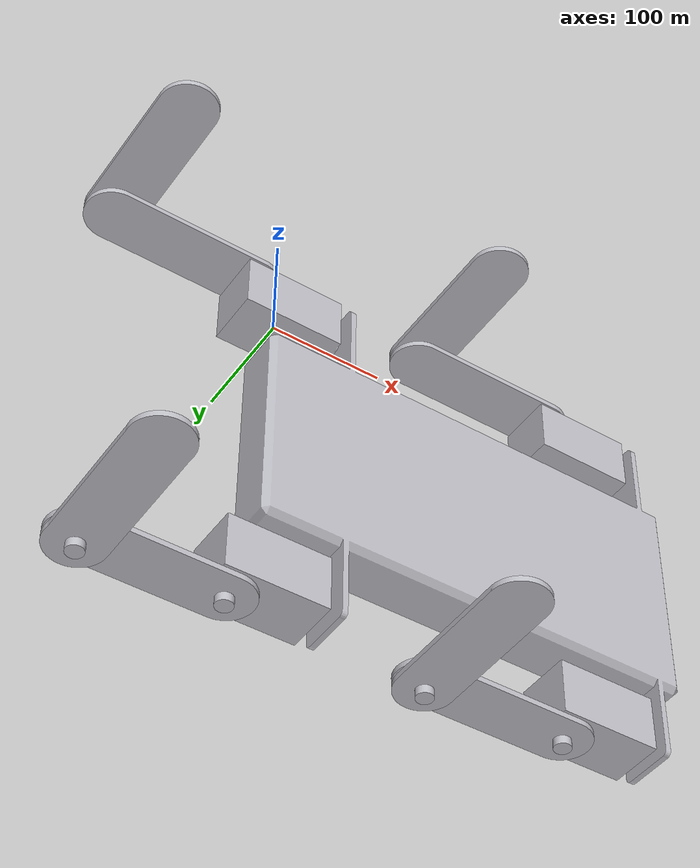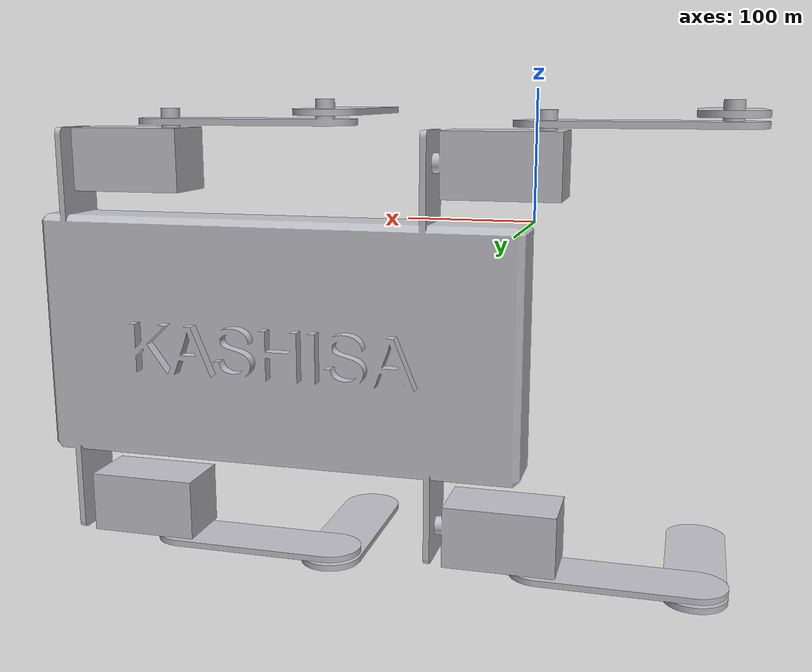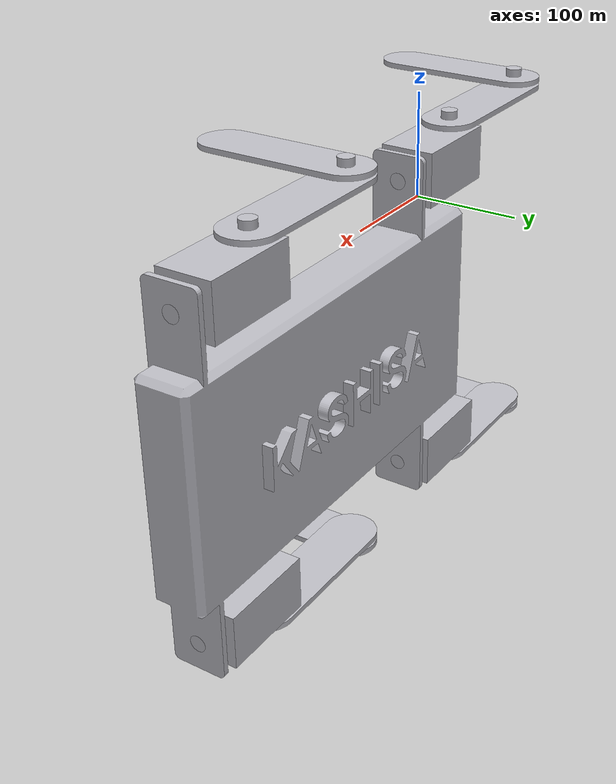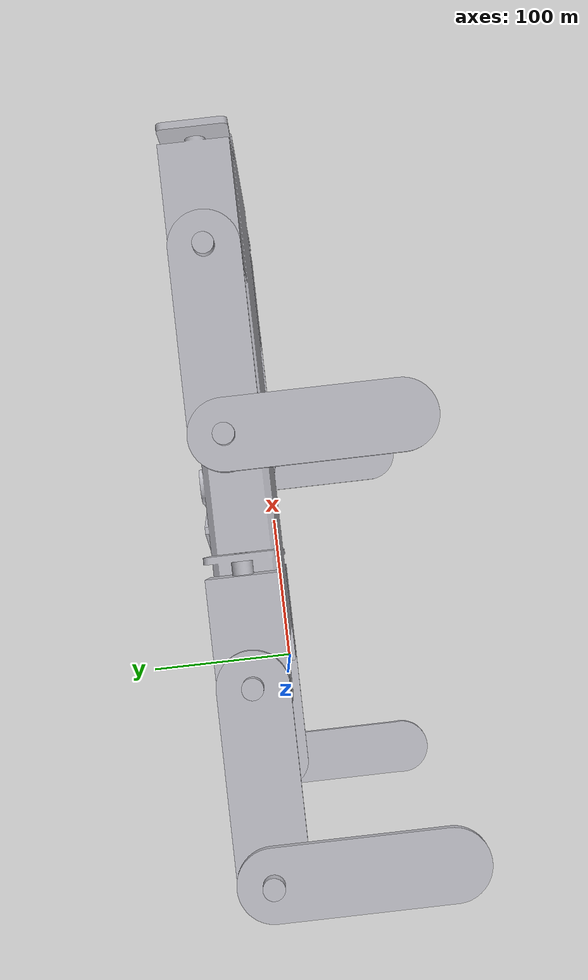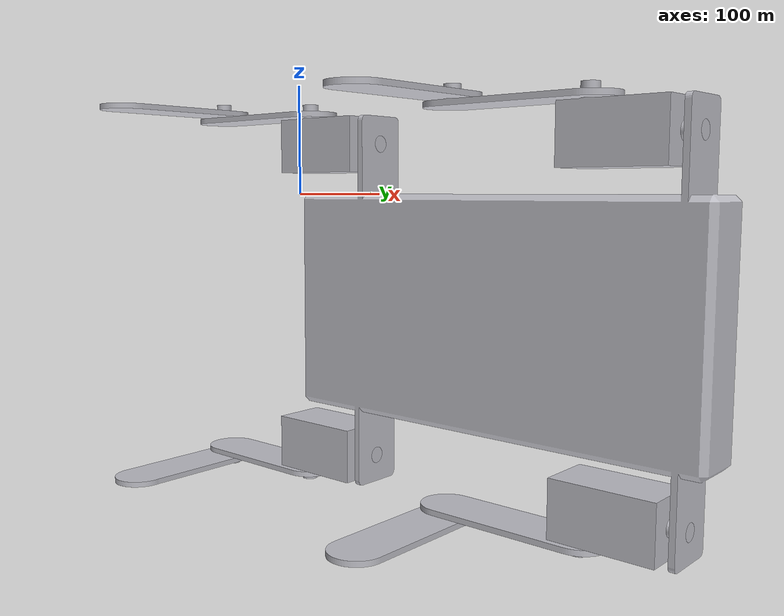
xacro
<?xml version="1.0" ?>
<robot name="kashisa" xmlns:xacro="http://www.ros.org/wiki/xacro">

<link name="base_link">
  <inertial>
    <origin xyz="0.20044273895362388 0.025241457931874628 -0.10004377551623893" rpy="0 0 0"/>
    <mass value="31.931098752935476"/>
    <inertia ixx="0.119193" iyy="0.538984" izz="0.433308" ixy="-1.1e-05" iyz="4.2e-05" ixz="-7.7e-05"/>
  </inertial>
  <visual>
    <origin xyz="0 0 0" rpy="0 0 0"/>
    <geometry>
      <mesh filename="package://kashisa_description/meshes/base_link.stl" scale="1 1 1"/>
    </geometry>
    <material name="silver"/>
  </visual>
  <collision>
    <origin xyz="0 0 0" rpy="0 0 0"/>
    <geometry>
      <mesh filename="package://kashisa_description/meshes/base_link.stl" scale="1 1 1"/>
    </geometry>
  </collision>
</link>

<link name="Component10_1">
  <inertial>
    <origin xyz="-0.05974102429528855 7.450580638557192e-10 0.00037406783885677447" rpy="0 0 0"/>
    <mass value="1.8078662851830212"/>
    <inertia ixx="0.000759" iyy="0.001659" izz="0.001637" ixy="0.0" iyz="0.0" ixz="2e-05"/>
  </inertial>
  <visual>
    <origin xyz="-0.38 -0.025 -0.045" rpy="0 0 0"/>
    <geometry>
      <mesh filename="package://kashisa_description/meshes/Component10_1.stl" scale="1 1 1"/>
    </geometry>
    <material name="silver"/>
  </visual>
  <collision>
    <origin xyz="-0.38 -0.025 -0.045" rpy="0 0 0"/>
    <geometry>
      <mesh filename="package://kashisa_description/meshes/Component10_1.stl" scale="1 1 1"/>
    </geometry>
  </collision>
</link>

<link name="Component11_1">
  <inertial>
    <origin xyz="-0.05974068738621018 7.450580534473783e-10 0.00037406783885677447" rpy="0 0 0"/>
    <mass value="1.8078662851830212"/>
    <inertia ixx="0.000759" iyy="0.001659" izz="0.001637" ixy="-0.0" iyz="-0.0" ixz="2e-05"/>
  </inertial>
  <visual>
    <origin xyz="-0.079263 -0.025 -0.045" rpy="0 0 0"/>
    <geometry>
      <mesh filename="package://kashisa_description/meshes/Component11_1.stl" scale="1 1 1"/>
    </geometry>
    <material name="silver"/>
  </visual>
  <collision>
    <origin xyz="-0.079263 -0.025 -0.045" rpy="0 0 0"/>
    <geometry>
      <mesh filename="package://kashisa_description/meshes/Component11_1.stl" scale="1 1 1"/>
    </geometry>
  </collision>
</link>

<link name="Component12_1">
  <inertial>
    <origin xyz="-0.07021108490906144 7.450580569168253e-10 -0.0018987203186763835" rpy="0 0 0"/>
    <mass value="0.3460642898443814"/>
    <inertia ixx="6.8e-05" iyy="0.000856" izz="0.000918" ixy="0.0" iyz="0.0" ixz="1.2e-05"/>
  </inertial>
  <visual>
    <origin xyz="-0.29 -0.025 -0.0775" rpy="0 0 0"/>
    <geometry>
      <mesh filename="package://kashisa_description/meshes/Component12_1.stl" scale="1 1 1"/>
    </geometry>
    <material name="silver"/>
  </visual>
  <collision>
    <origin xyz="-0.29 -0.025 -0.0775" rpy="0 0 0"/>
    <geometry>
      <mesh filename="package://kashisa_description/meshes/Component12_1.stl" scale="1 1 1"/>
    </geometry>
  </collision>
</link>

<link name="Component13_1">
  <inertial>
    <origin xyz="8.000530321572441e-09 -0.06136164970702396 -0.0025000000000000022" rpy="0 0 0"/>
    <mass value="0.30563115003100577"/>
    <inertia ixx="0.000645" iyy="6.2e-05" izz="0.000706" ixy="0.0" iyz="-0.0" ixz="-0.0"/>
  </inertial>
  <visual>
    <origin xyz="-0.16 -0.025 -0.085" rpy="0 0 0"/>
    <geometry>
      <mesh filename="package://kashisa_description/meshes/Component13_1.stl" scale="1 1 1"/>
    </geometry>
    <material name="silver"/>
  </visual>
  <collision>
    <origin xyz="-0.16 -0.025 -0.085" rpy="0 0 0"/>
    <geometry>
      <mesh filename="package://kashisa_description/meshes/Component13_1.stl" scale="1 1 1"/>
    </geometry>
  </collision>
</link>

<link name="Component14_1">
  <inertial>
    <origin xyz="-0.07021074815213399 3.4266314438702317e-10 -0.0018987203196925706" rpy="0 0 0"/>
    <mass value="0.346064290429252"/>
    <inertia ixx="6.8e-05" iyy="0.000856" izz="0.000918" ixy="-0.0" iyz="0.0" ixz="1.2e-05"/>
  </inertial>
  <visual>
    <origin xyz="0.010737 -0.025 -0.0775" rpy="0 0 0"/>
    <geometry>
      <mesh filename="package://kashisa_description/meshes/Component14_1.stl" scale="1 1 1"/>
    </geometry>
    <material name="silver"/>
  </visual>
  <collision>
    <origin xyz="0.010737 -0.025 -0.0775" rpy="0 0 0"/>
    <geometry>
      <mesh filename="package://kashisa_description/meshes/Component14_1.stl" scale="1 1 1"/>
    </geometry>
  </collision>
</link>

<link name="Component15_1">
  <inertial>
    <origin xyz="3.4227347861515156e-07 -0.06136165065495081 -0.0025000000000000022" rpy="0 0 0"/>
    <mass value="0.30563114725287055"/>
    <inertia ixx="0.000645" iyy="6.2e-05" izz="0.000706" ixy="0.0" iyz="0.0" ixz="-0.0"/>
  </inertial>
  <visual>
    <origin xyz="0.140737 -0.025 -0.085" rpy="0 0 0"/>
    <geometry>
      <mesh filename="package://kashisa_description/meshes/Component15_1.stl" scale="1 1 1"/>
    </geometry>
    <material name="silver"/>
  </visual>
  <collision>
    <origin xyz="0.140737 -0.025 -0.085" rpy="0 0 0"/>
    <geometry>
      <mesh filename="package://kashisa_description/meshes/Component15_1.stl" scale="1 1 1"/>
    </geometry>
  </collision>
</link>

<link name="Component16_1">
  <inertial>
    <origin xyz="-0.05974102995770275 0.0 -0.00037406783882965033" rpy="0 0 0"/>
    <mass value="1.8078662851830203"/>
    <inertia ixx="0.000759" iyy="0.001659" izz="0.001637" ixy="-0.0" iyz="0.0" ixz="-2e-05"/>
  </inertial>
  <visual>
    <origin xyz="-0.38 -0.025 0.245" rpy="0 0 0"/>
    <geometry>
      <mesh filename="package://kashisa_description/meshes/Component16_1.stl" scale="1 1 1"/>
    </geometry>
    <material name="silver"/>
  </visual>
  <collision>
    <origin xyz="-0.38 -0.025 0.245" rpy="0 0 0"/>
    <geometry>
      <mesh filename="package://kashisa_description/meshes/Component16_1.stl" scale="1 1 1"/>
    </geometry>
  </collision>
</link>

<link name="Component17_1">
  <inertial>
    <origin xyz="-0.07021109057150285 1.734723475976807e-17 0.001898720318676439" rpy="0 0 0"/>
    <mass value="0.3460642898443824"/>
    <inertia ixx="6.8e-05" iyy="0.000856" izz="0.000918" ixy="0.0" iyz="0.0" ixz="-1.2e-05"/>
  </inertial>
  <visual>
    <origin xyz="-0.29 -0.025 0.2775" rpy="0 0 0"/>
    <geometry>
      <mesh filename="package://kashisa_description/meshes/Component17_1.stl" scale="1 1 1"/>
    </geometry>
    <material name="silver"/>
  </visual>
  <collision>
    <origin xyz="-0.29 -0.025 0.2775" rpy="0 0 0"/>
    <geometry>
      <mesh filename="package://kashisa_description/meshes/Component17_1.stl" scale="1 1 1"/>
    </geometry>
  </collision>
</link>

<link name="Component18_1">
  <inertial>
    <origin xyz="-2.4917207777308548e-05 -0.06136029526633242 0.0025000000000000022" rpy="0 0 0"/>
    <mass value="0.30593567597444016"/>
    <inertia ixx="0.000646" iyy="6.2e-05" izz="0.000706" ixy="0.0" iyz="-0.0" ixz="0.0"/>
  </inertial>
  <visual>
    <origin xyz="-0.16 -0.025 0.285" rpy="0 0 0"/>
    <geometry>
      <mesh filename="package://kashisa_description/meshes/Component18_1.stl" scale="1 1 1"/>
    </geometry>
    <material name="silver"/>
  </visual>
  <collision>
    <origin xyz="-0.16 -0.025 0.285" rpy="0 0 0"/>
    <geometry>
      <mesh filename="package://kashisa_description/meshes/Component18_1.stl" scale="1 1 1"/>
    </geometry>
  </collision>
</link>

<link name="Component19_1">
  <inertial>
    <origin xyz="-0.059741029957702745 0.0 -0.00037406783882965033" rpy="0 0 0"/>
    <mass value="1.8078662851830203"/>
    <inertia ixx="0.000759" iyy="0.001659" izz="0.001637" ixy="0.0" iyz="0.0" ixz="-2e-05"/>
  </inertial>
  <visual>
    <origin xyz="-0.075 -0.025 0.245" rpy="0 0 0"/>
    <geometry>
      <mesh filename="package://kashisa_description/meshes/Component19_1.stl" scale="1 1 1"/>
    </geometry>
    <material name="silver"/>
  </visual>
  <collision>
    <origin xyz="-0.075 -0.025 0.245" rpy="0 0 0"/>
    <geometry>
      <mesh filename="package://kashisa_description/meshes/Component19_1.stl" scale="1 1 1"/>
    </geometry>
  </collision>
</link>

<link name="Component20_1">
  <inertial>
    <origin xyz="-0.06509942111479715 -6.938893903907228e-18 0.001862572360654513" rpy="0 0 0"/>
    <mass value="0.32643928984438253"/>
    <inertia ixx="6.4e-05" iyy="0.000715" izz="0.000773" ixy="-0.0" iyz="0.0" ixz="-1.1e-05"/>
  </inertial>
  <visual>
    <origin xyz="0.015 -0.025 0.2775" rpy="0 0 0"/>
    <geometry>
      <mesh filename="package://kashisa_description/meshes/Component20_1.stl" scale="1 1 1"/>
    </geometry>
    <material name="silver"/>
  </visual>
  <collision>
    <origin xyz="0.015 -0.025 0.2775" rpy="0 0 0"/>
    <geometry>
      <mesh filename="package://kashisa_description/meshes/Component20_1.stl" scale="1 1 1"/>
    </geometry>
  </collision>
</link>

<link name="Component21_1">
  <inertial>
    <origin xyz="0.0002333782747266644 -0.06136846857430758 0.0025000000000000022" rpy="0 0 0"/>
    <mass value="0.303237728159071"/>
    <inertia ixx="0.000643" iyy="6e-05" izz="0.000702" ixy="1e-06" iyz="0.0" ixz="-0.0"/>
  </inertial>
  <visual>
    <origin xyz="0.135 -0.025 0.285" rpy="0 0 0"/>
    <geometry>
      <mesh filename="package://kashisa_description/meshes/Component21_1.stl" scale="1 1 1"/>
    </geometry>
    <material name="silver"/>
  </visual>
  <collision>
    <origin xyz="0.135 -0.025 0.285" rpy="0 0 0"/>
    <geometry>
      <mesh filename="package://kashisa_description/meshes/Component21_1.stl" scale="1 1 1"/>
    </geometry>
  </collision>
</link>

<joint name="revolute_1" type="continuous">
  <origin xyz="0.38 0.025 0.045" rpy="0 0 0"/>
  <parent link="base_link"/>
  <child link="Component10_1"/>
  <axis xyz="-1.0 0.0 0.0"/>
</joint>

<joint name="revolute_2" type="continuous">
  <origin xyz="0.079263 0.025 0.045" rpy="0 0 0"/>
  <parent link="base_link"/>
  <child link="Component11_1"/>
  <axis xyz="-1.0 0.0 0.0"/>
</joint>

<joint name="revolute_3" type="continuous">
  <origin xyz="-0.09 0.0 0.0325" rpy="0 0 0"/>
  <parent link="Component10_1"/>
  <child link="Component12_1"/>
  <axis xyz="0.0 0.0 1.0"/>
</joint>

<joint name="revolute_4" type="continuous">
  <origin xyz="-0.13 0.0 0.0075" rpy="0 0 0"/>
  <parent link="Component12_1"/>
  <child link="Component13_1"/>
  <axis xyz="0.0 0.0 1.0"/>
</joint>

<joint name="revolute_5" type="continuous">
  <origin xyz="-0.09 0.0 0.0325" rpy="0 0 0"/>
  <parent link="Component11_1"/>
  <child link="Component14_1"/>
  <axis xyz="0.0 0.0 1.0"/>
</joint>

<joint name="revolute_6" type="continuous">
  <origin xyz="-0.13 0.0 0.0075" rpy="0 0 0"/>
  <parent link="Component14_1"/>
  <child link="Component15_1"/>
  <axis xyz="0.0 0.0 1.0"/>
</joint>

<joint name="revolute_7" type="continuous">
  <origin xyz="0.38 0.025 -0.245" rpy="0 0 0"/>
  <parent link="base_link"/>
  <child link="Component16_1"/>
  <axis xyz="-1.0 0.0 0.0"/>
</joint>

<joint name="revolute_8" type="continuous">
  <origin xyz="-0.09 0.0 -0.0325" rpy="0 0 0"/>
  <parent link="Component16_1"/>
  <child link="Component17_1"/>
  <axis xyz="0.0 0.0 -1.0"/>
</joint>

<joint name="revolute_9" type="continuous">
  <origin xyz="-0.13 0.0 -0.0075" rpy="0 0 0"/>
  <parent link="Component17_1"/>
  <child link="Component18_1"/>
  <axis xyz="0.0 0.0 -1.0"/>
</joint>

<joint name="revolute_10" type="continuous">
  <origin xyz="0.075 0.025 -0.245" rpy="0 0 0"/>
  <parent link="base_link"/>
  <child link="Component19_1"/>
  <axis xyz="-1.0 0.0 0.0"/>
</joint>

<joint name="revolute_11" type="continuous">
  <origin xyz="-0.09 0.0 -0.0325" rpy="0 0 0"/>
  <parent link="Component19_1"/>
  <child link="Component20_1"/>
  <axis xyz="0.0 0.0 -1.0"/>
</joint>

<joint name="revolute_12" type="continuous">
  <origin xyz="-0.12 0.0 -0.0075" rpy="0 0 0"/>
  <parent link="Component20_1"/>
  <child link="Component21_1"/>
  <axis xyz="0.0 0.0 -1.0"/>
</joint>

</robot>
